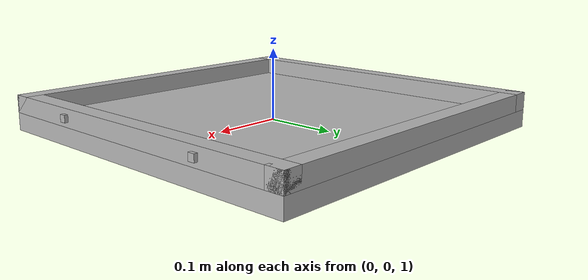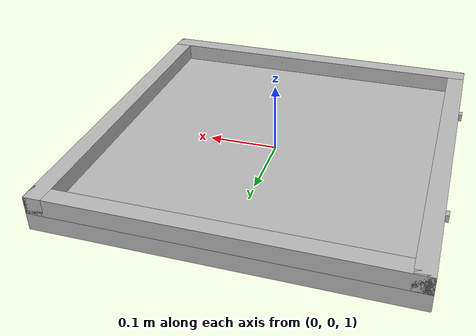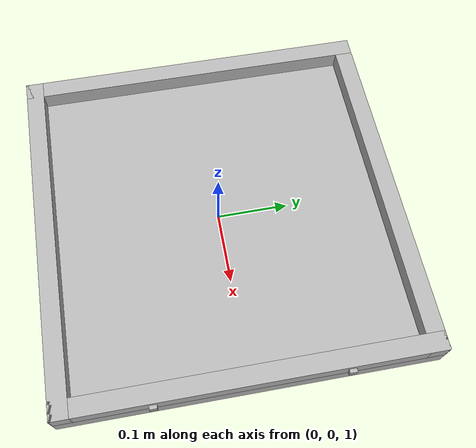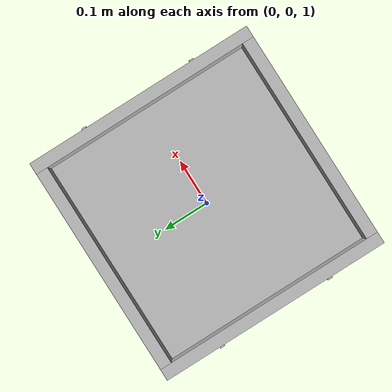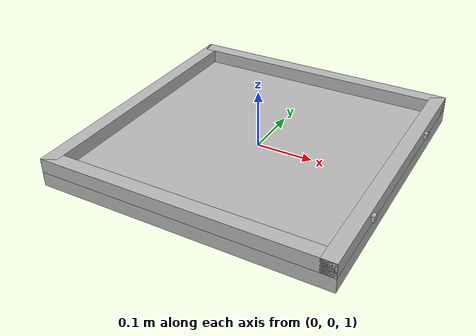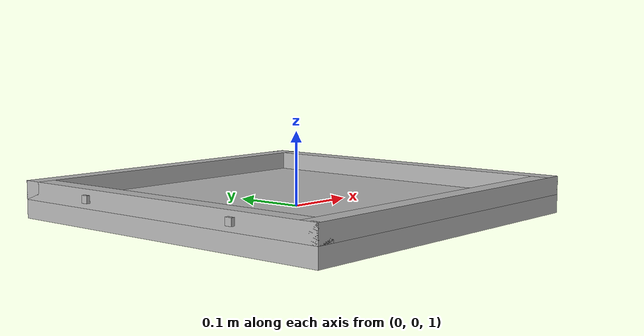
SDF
<?xml version='1.0'?>
<sdf version="1.5">
  <model name="board">
    <pose>0 0 1.0 0.0 0.0 0.0</pose>

    <!-- Base Link -->
    <link name="base_link">
      <inertial>
        <pose>0.0 0.0 0.0 0.0 0.0 0.0</pose>
        <mass>2</mass>
        <inertia>
          <ixx>0.0416</ixx>
          <ixy>0.0</ixy>
          <ixz>0.0</ixz>
          <iyy>0.0416</iyy>
          <iyz>0.0</iyz>
          <izz>0.083</izz>
        </inertia>
      </inertial>
      <collision name='base_link_collision'>
        <geometry>
          <box>
            <size>0.5 0.5 0.025</size>
          </box>
        </geometry>
        <max_contacts>10</max_contacts>
        <surface>
          <contact>
            <ode>
              <soft_erp>0.2</soft_erp>
              <soft_cfm>0</soft_cfm>
              <kp>18000000</kp>
              <kd>100</kd>
              <max_vel>100</max_vel>
              <min_depth>0.0001</min_depth>
            </ode>
          </contact>
          <friction>
            <ode>
              <mu>1</mu>
              <mu2>1</mu2>
              <fdir1>0 0 0</fdir1>
              <slip1>0</slip1>
              <slip2>0</slip2>
            </ode>
          </friction>
          <bounce>
            <restitution_coefficient>0</restitution_coefficient>
            <threshold>100000</threshold>
          </bounce>
        </surface>
      </collision>
      <visual name="base_link_visual">
        <geometry>
          <box>
            <size>0.5 0.5 0.025</size>
          </box>
        </geometry>
      </visual>
    </link>

    <!-- Border Links -->
    <link name="border_top_link">
      <pose>0.2375 0.0 0.025 0.0 0.0 0.0</pose>
      <inertial>
        <pose>0.0 0.0 0.0 0.0 0.0 0.0</pose>
        <mass>0.01</mass>
        <inertia>
          <ixx>0.000208</ixx>
          <ixy>0.0</ixy>
          <ixz>0.0</ixz>
          <iyy>0.000001037</iyy>
          <iyz>0.0</iyz>
          <izz>0.000208</izz>
        </inertia>
      </inertial>
      <collision name='border_top_link_collision'>
        <geometry>
          <box>
            <size>0.025 0.5 0.025</size>
          </box>
        </geometry>
      </collision>
      <visual name="border_top_link_visual">
        <geometry>
          <box>
            <size>0.025 0.5 0.025</size>
          </box>
        </geometry>
      </visual>
    </link>
    <link name="border_bottom_link">
      <pose>-0.2375 0.0 0.025 0.0 0.0 0.0</pose>
      <inertial>
        <pose>0.0 0.0 0.0 0.0 0.0 0.0</pose>
        <mass>0.01</mass>
        <inertia>
          <ixx>0.000208</ixx>
          <ixy>0.0</ixy>
          <ixz>0.0</ixz>
          <iyy>0.000001037</iyy>
          <iyz>0.0</iyz>
          <izz>0.000208</izz>
        </inertia>
      </inertial>
      <collision name='border_bottom_link_collision'>
        <geometry>
          <box>
            <size>0.025 0.5 0.025</size>
          </box>
        </geometry>
      </collision>
      <visual name="border_bottom_link_visual">
        <geometry>
          <box>
            <size>0.025 0.5 0.025</size>
          </box>
        </geometry>
      </visual>
    </link>
    <link name="border_left_link">
      <pose>0.0 0.2375 0.025 0.0 0.0 0.0</pose>
      <inertial>
        <pose>0.0 0.0 0.0 0.0 0.0 0.0</pose>
        <mass>0.01</mass>
        <inertia>
          <ixx>0.000001037</ixx>
          <ixy>0.0</ixy>
          <ixz>0.0</ixz>
          <iyy>0.000208</iyy>
          <iyz>0.0</iyz>
          <izz>0.000208</izz>
        </inertia>
      </inertial>
      <collision name='border_left_link_collision'>
        <geometry>
          <box>
            <size>0.5 0.025 0.025</size>
          </box>
        </geometry>
      </collision>
      <visual name="border_left_link_visual">
        <geometry>
          <box>
            <size>0.5 0.025 0.025</size>
          </box>
        </geometry>
      </visual>
    </link>
    <link name="border_right_link">
      <pose>0.0 -0.2375 0.025 0.0 0.0 0.0</pose>
      <inertial>
        <pose>0.0 0.0 0.0 0.0 0.0 0.0</pose>
        <mass>0.01</mass>
        <inertia>
          <ixx>0.000001037</ixx>
          <ixy>0.0</ixy>
          <ixz>0.0</ixz>
          <iyy>0.000208</iyy>
          <iyz>0.0</iyz>
          <izz>0.000208</izz>
        </inertia>
      </inertial>
      <collision name='border_right_link_collision'>
        <geometry>
          <box>
            <size>0.5 0.025 0.025</size>
          </box>
        </geometry>
      </collision>
      <visual name="border_right_link_visual">
        <geometry>
          <box>
            <size>0.5 0.025 0.025</size>
          </box>
        </geometry>
      </visual>
    </link>

    <!-- Handle Dummy Links -->
    <link name="side1_left_dummy_link">
      <pose>-0.25 0.125 0.025 0.0 0.0 0.0</pose>
      <inertial>
        <pose>0.0 0.0 0.0 0.0 0.0 0.0</pose>
        <mass>0.1</mass>
        <inertia>
          <ixx>0,00000166</ixx>
          <ixy>0.0</ixy>
          <ixz>0.0</ixz>
          <iyy>0,00000166</iyy>
          <iyz>0.0</iyz>
          <izz>0,00000166</izz>
        </inertia>
      </inertial>
      <collision name='side1_left_dummy_link_collision'>
        <geometry>
          <box>
            <size>0.01 0.01 0.01</size>
          </box>
        </geometry>
      </collision>
      <visual name="side1_left_dummy_link_visual">
        <geometry>
          <box>
            <size>0.01 0.01 0.01</size>
          </box>
        </geometry>
      </visual>
    </link>

    <link name="side1_right_dummy_link">
      <pose>-0.25 -0.125 0.025 0.0 0.0 0.0</pose>
      <inertial>
        <pose>0.0 0.0 0.0 0.0 0.0 0.0</pose>
        <mass>0.1</mass>
        <inertia>
          <ixx>0,00000166</ixx>
          <ixy>0.0</ixy>
          <ixz>0.0</ixz>
          <iyy>0,00000166</iyy>
          <iyz>0.0</iyz>
          <izz>0,00000166</izz>
        </inertia>
      </inertial>
      <collision name='side1_right_dummy_link_collision'>
        <geometry>
          <box>
            <size>0.01 0.01 0.01</size>
          </box>
        </geometry>
      </collision>
      <visual name="side1_right_dummy_link_visual">
        <geometry>
          <box>
            <size>0.01 0.01 0.01</size>
          </box>
        </geometry>
      </visual>
    </link>

    <link name="side2_left_dummy_link">
      <pose>0.25 0.125 0.025 0.0 0.0 0.0</pose>
      <inertial>
        <pose>0.0 0.0 0.0 0.0 0.0 0.0</pose>
        <mass>0.1</mass>
        <inertia>
          <ixx>0,00000166</ixx>
          <ixy>0.0</ixy>
          <ixz>0.0</ixz>
          <iyy>0,00000166</iyy>
          <iyz>0.0</iyz>
          <izz>0,00000166</izz>
        </inertia>
      </inertial>
      <collision name='side2_left_dummy_link_collision'>
        <geometry>
          <box>
            <size>0.01 0.01 0.01</size>
          </box>
        </geometry>
      </collision>
      <visual name="side2_left_dummy_link_visual">
        <geometry>
          <box>
            <size>0.01 0.01 0.01</size>
          </box>
        </geometry>
      </visual>
    </link>

    <link name="side2_right_dummy_link">
      <pose>0.25 -0.125 0.025 0.0 0.0 0.0</pose>
      <inertial>
        <pose>0.0 0.0 0.0 0.0 0.0 0.0</pose>
        <mass>0.1</mass>
        <inertia>
          <ixx>0,00000166</ixx>
          <ixy>0.0</ixy>
          <ixz>0.0</ixz>
          <iyy>0,00000166</iyy>
          <iyz>0.0</iyz>
          <izz>0,00000166</izz>
        </inertia>
      </inertial>
      <collision name='side2_right_dummy_link_collision'>
        <geometry>
          <box>
            <size>0.01 0.01 0.01</size>
          </box>
        </geometry>
      </collision>
      <visual name="side2_right_dummy_link_visual">
        <geometry>
          <box>
            <size>0.01 0.01 0.01</size>
          </box>
        </geometry>
      </visual>
    </link>

    <!-- Joints -->
    <joint name="joint1" type="fixed">
      <parent>base_link</parent>
      <child>border_top_link</child>
      <pose>0.0 0.0 0.0 0.0 0.0 0.0</pose>
      <axis>
        <xyz>1.0 0.0 0.0</xyz>
      </axis>
    </joint>
    <joint name="joint2" type="fixed">
      <parent>base_link</parent>
      <child>border_bottom_link</child>
      <pose>0.0 0.0 0.0 0.0 0.0 0.0</pose>
      <axis>
        <xyz>1.0 0.0 0.0</xyz>
      </axis>
    </joint>
    <joint name="joint3" type="fixed">
      <parent>base_link</parent>
      <child>border_left_link</child>
      <pose>0.0 0.0 0.0 0.0 0.0 0.0</pose>
      <axis>
        <xyz>1.0 0.0 0.0</xyz>
      </axis>
    </joint>
    <joint name="joint4" type="fixed">
      <parent>base_link</parent>
      <child>border_right_link</child>
      <pose>0.0 0.0 0.0 0.0 0.0 0.0</pose>
      <axis>
        <xyz>1.0 0.0 0.0</xyz>
      </axis>
    </joint>

    <joint name="joint5" type="fixed">
      <parent>base_link</parent>
      <child>side1_left_dummy_link</child>
      <pose>0.0 0.0 0.0 0.0 0.0 0.0</pose>
      <axis>
        <xyz>1.0 0.0 0.0</xyz>
      </axis>
    </joint>
    <joint name="joint6" type="fixed">
      <parent>base_link</parent>
      <child>side1_right_dummy_link</child>
      <pose>0.0 0.0 0.0 0.0 0.0 0.0</pose>
      <axis>
        <xyz>1.0 0.0 0.0</xyz>
      </axis>
    </joint>
    <joint name="joint7" type="fixed">
      <parent>base_link</parent>
      <child>side2_left_dummy_link</child>
      <pose>0.0 0.0 0.0 0.0 0.0 0.0</pose>
      <axis>
        <xyz>1.0 0.0 0.0</xyz>
      </axis>
    </joint>
    <joint name="joint8" type="fixed">
      <parent>base_link</parent>
      <child>side2_right_dummy_link</child>
      <pose>0.0 0.0 0.0 0.0 0.0 0.0</pose>
      <axis>
        <xyz>1.0 0.0 0.0</xyz>
      </axis>
    </joint>

    <!-- Linkattacher Plugin -->
    <plugin name='link_attacher' filename='libgazebo_yarp_linkattacher.so'>
      <yarpConfigurationFile>model://board/conf/linkattacher.ini</yarpConfigurationFile>
    </plugin>

  </model>
</sdf>
